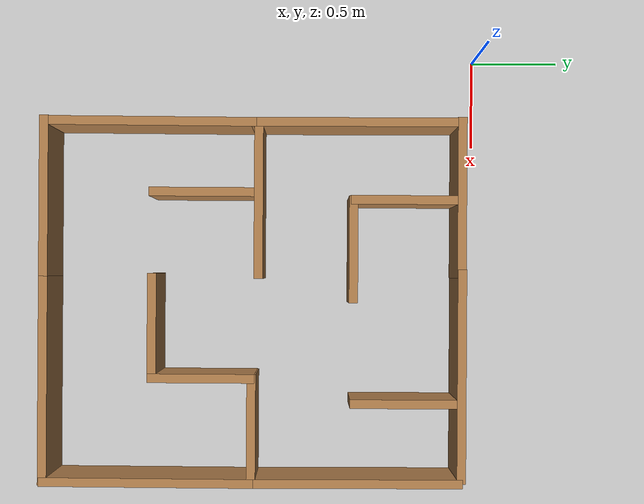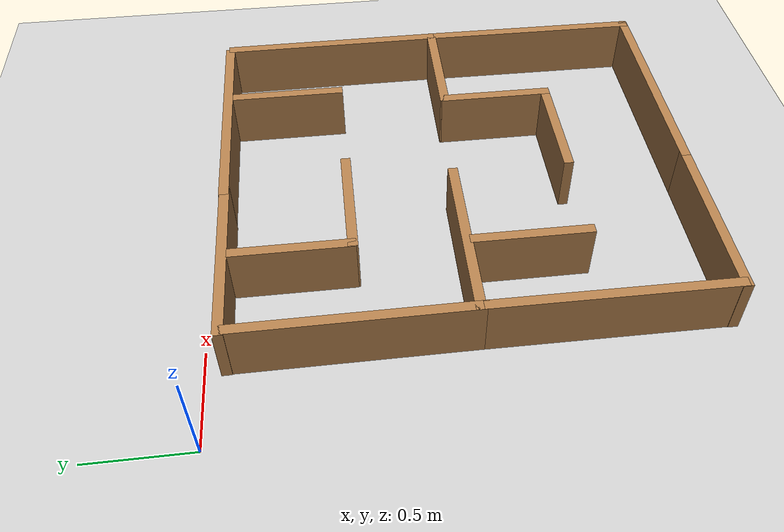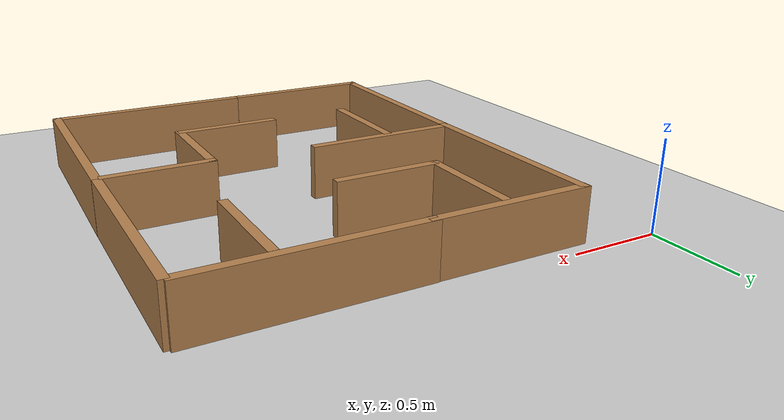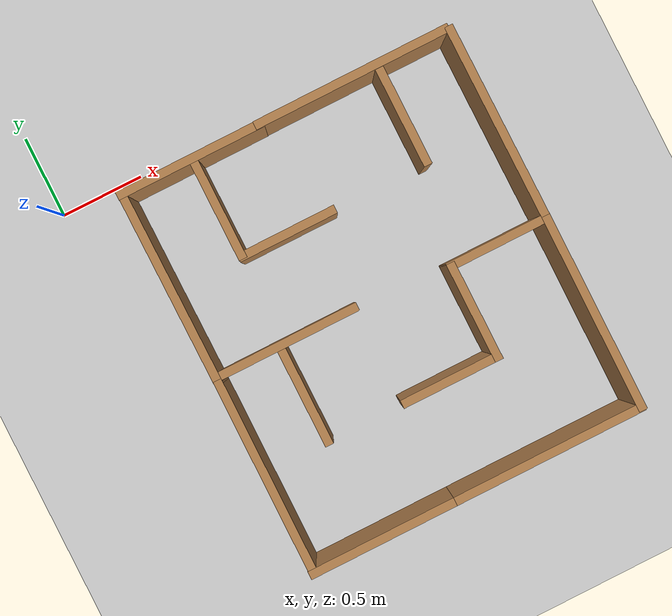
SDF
<sdf version="1.7">
 <world name="default">
  <light name="sun" type="directional">
   <pose>0 0 10 0 -0 0</pose>
   <diffuse>0.8 0.8 0.8 1</diffuse>
   <specular>0.2 0.2 0.2 1</specular>
   <attenuation>
    <range>1000</range>
    <constant>0.9</constant>
    <linear>0.01</linear>
    <quadratic>0.001</quadratic>
   </attenuation>
   <direction>-0.5 0.1 -0.9</direction>
   <spot><inner_angle>0</inner_angle><outer_angle>0</outer_angle><falloff>0</falloff></spot>
  </light>
  <model name="ground_plane">
   <static>1</static>
   <link name="link">
    <collision name="collision">
     <geometry><plane><normal>0 0 1</normal><size>100 100</size></plane></geometry>
     <surface><friction><ode><mu>100</mu><mu2>50</mu2></ode></friction></surface>
    </collision>
    <visual name="visual">
     <cast_shadows>0</cast_shadows>
     <geometry><plane><normal>0 0 1</normal><size>100 100</size></plane></geometry>
     <material>
      <script><uri>file://media/materials/scripts/gazebo.material</uri><name>Gazebo/Grey</name></script>
     </material>
    </visual>
   </link>
  </model>
  <gravity>0 0 -9.8</gravity>
  <magnetic_field>6e-06 2.3e-05 -4.2e-05</magnetic_field>
  <atmosphere type="adiabatic"/>
  <physics type="ode">
   <max_step_size>0.001</max_step_size>
   <real_time_factor>1</real_time_factor>
   <real_time_update_rate>1000</real_time_update_rate>
  </physics>
  <scene><ambient>0.4 0.4 0.4 1</ambient><background>0.7 0.7 0.7 1</background><shadows>1</shadows></scene>
  <spherical_coordinates>
   <surface_model>EARTH_WGS84</surface_model>
   <latitude_deg>0</latitude_deg>
   <longitude_deg>0</longitude_deg>
   <elevation>0</elevation>
   <heading_deg>0</heading_deg>
  </spherical_coordinates>
  <model name="wall90cm">
   <pose>0.820279 -2.44139 0 0 -0 0</pose>
   <link name="Wall_6">
    <collision name="Wall_6_Collision">
     <geometry><box><size>0.9 0.05 0.3</size></box></geometry>
     <pose>0 0 0.15 0 -0 0</pose>
    </collision>
    <visual name="Wall_6_Visual">
     <pose>0 0 0.15 0 -0 0</pose>
     <geometry><box><size>0.9 0.05 0.3</size></box></geometry>
     <material>
      <script><uri>file://media/materials/scripts/gazebo.material</uri><name>Gazebo/Wood</name></script>
      <ambient>1 1 1 1</ambient>
     </material>
     <meta><layer>0</layer></meta>
    </visual>
   </link>
   <static>1</static>
  </model>
  <model name="wall120cm">
   <pose>2.42344 -1.86218 0 0 0 -1.57432</pose>
   <link name="Wall_11">
    <collision name="Wall_11_Collision">
     <geometry><box><size>1.2 0.05 0.3</size></box></geometry>
     <pose>0 0 0.15 0 -0 0</pose>
    </collision>
    <visual name="Wall_11_Visual">
     <pose>0 0 0.15 0 -0 0</pose>
     <geometry><box><size>1.2 0.05 0.3</size></box></geometry>
     <material>
      <script><uri>file://media/materials/scripts/gazebo.material</uri><name>Gazebo/Wood</name></script>
      <ambient>1 1 1 1</ambient>
     </material>
     <meta><layer>0</layer></meta>
    </visual>
   </link>
   <static>1</static>
  </model>
  <model name="wall120cm_0">
   <pose>2.42296 -0.690179 0 0 0 -1.56713</pose>
   <link name="Wall_11">
    <collision name="Wall_11_Collision">
     <geometry><box><size>1.2 0.05 0.3</size></box></geometry>
     <pose>0 0 0.15 0 -0 0</pose>
    </collision>
    <visual name="Wall_11_Visual">
     <pose>0 0 0.15 0 -0 0</pose>
     <geometry><box><size>1.2 0.05 0.3</size></box></geometry>
     <material>
      <script><uri>file://media/materials/scripts/gazebo.material</uri><name>Gazebo/Wood</name></script>
      <ambient>1 1 1 1</ambient>
     </material>
     <meta><layer>0</layer></meta>
    </visual>
   </link>
   <static>1</static>
  </model>
  <model name="wall120cm_1">
   <pose>1.83807 -2.44151 0 0 -0 0</pose>
   <link name="Wall_11">
    <collision name="Wall_11_Collision">
     <geometry><box><size>1.2 0.05 0.3</size></box></geometry>
     <pose>0 0 0.15 0 -0 0</pose>
    </collision>
    <visual name="Wall_11_Visual">
     <pose>0 0 0.15 0 -0 0</pose>
     <geometry><box><size>1.2 0.05 0.3</size></box></geometry>
     <material>
      <script><uri>file://media/materials/scripts/gazebo.material</uri><name>Gazebo/Wood</name></script>
      <ambient>1 1 1 1</ambient>
     </material>
     <meta><layer>0</layer></meta>
    </visual>
   </link>
   <static>1</static>
  </model>
  <model name="wall120cm_2">
   <pose>1.82028 -0.097771 0 0 -0 0</pose>
   <link name="Wall_11">
    <collision name="Wall_11_Collision">
     <geometry><box><size>1.2 0.05 0.3</size></box></geometry>
     <pose>0 0 0.15 0 -0 0</pose>
    </collision>
    <visual name="Wall_11_Visual">
     <pose>0 0 0.15 0 -0 0</pose>
     <geometry><box><size>1.2 0.05 0.3</size></box></geometry>
     <material>
      <script><uri>file://media/materials/scripts/gazebo.material</uri><name>Gazebo/Wood</name></script>
      <ambient>1 1 1 1</ambient>
     </material>
     <meta><layer>0</layer></meta>
    </visual>
   </link>
   <static>1</static>
  </model>
  <model name="wall90cm_0">
   <pose>0.819818 -0.100866 0 0 -0 0</pose>
   <link name="Wall_6">
    <collision name="Wall_6_Collision">
     <geometry><box><size>0.9 0.05 0.3</size></box></geometry>
     <pose>0 0 0.15 0 -0 0</pose>
    </collision>
    <visual name="Wall_6_Visual">
     <pose>0 0 0.15 0 -0 0</pose>
     <geometry><box><size>0.9 0.05 0.3</size></box></geometry>
     <material>
      <script><uri>file://media/materials/scripts/gazebo.material</uri><name>Gazebo/Wood</name></script>
      <ambient>1 1 1 1</ambient>
     </material>
     <meta><layer>0</layer></meta>
    </visual>
   </link>
   <static>1</static>
  </model>
  <model name="wall120cm_clone">
   <pose>0.40003 -1.85291 0 0 0 -1.57432</pose>
   <link name="Wall_11">
    <collision name="Wall_11_Collision">
     <geometry><box><size>1.2 0.05 0.3</size></box></geometry>
     <pose>0 0 0.15 0 -0 0</pose>
    </collision>
    <visual name="Wall_11_Visual">
     <pose>0 0 0.15 0 -0 0</pose>
     <geometry><box><size>1.2 0.05 0.3</size></box></geometry>
     <material>
      <script><uri>file://media/materials/scripts/gazebo.material</uri><name>Gazebo/Wood</name></script>
      <ambient>1 1 1 1</ambient>
     </material>
     <meta><layer>0</layer></meta>
    </visual>
   </link>
   <static>1</static>
  </model>
  <model name="wall120cm_0_clone_0">
   <pose>0.399943 -0.679759 0 0 0 -1.56713</pose>
   <link name="Wall_11">
    <collision name="Wall_11_Collision">
     <geometry><box><size>1.2 0.05 0.3</size></box></geometry>
     <pose>0 0 0.15 0 -0 0</pose>
    </collision>
    <visual name="Wall_11_Visual">
     <pose>0 0 0.15 0 -0 0</pose>
     <geometry><box><size>1.2 0.05 0.3</size></box></geometry>
     <material>
      <script><uri>file://media/materials/scripts/gazebo.material</uri><name>Gazebo/Wood</name></script>
      <ambient>1 1 1 1</ambient>
     </material>
     <meta><layer>0</layer></meta>
    </visual>
   </link>
   <static>1</static>
  </model>
  <model name="wall60cm">
   <pose>1.83843 -1.55768 0 0 0 -1.57132</pose>
   <link name="Wall_4">
    <collision name="Wall_4_Collision">
     <geometry><box><size>0.6 0.05 0.3</size></box></geometry>
     <pose>0 0 0.15 0 -0 0</pose>
    </collision>
    <visual name="Wall_4_Visual">
     <pose>0 0 0.15 0 -0 0</pose>
     <geometry><box><size>0.6 0.05 0.3</size></box></geometry>
     <material>
      <script><uri>file://media/materials/scripts/gazebo.material</uri><name>Gazebo/Wood</name></script>
      <ambient>1 1 1 1</ambient>
     </material>
     <meta><layer>0</layer></meta>
    </visual>
   </link>
   <static>1</static>
  </model>
  <model name="wall60cm_0">
   <pose>2.11457 -1.27506 0 0 -0 0</pose>
   <link name="Wall_4">
    <collision name="Wall_4_Collision">
     <geometry><box><size>0.6 0.05 0.3</size></box></geometry>
     <pose>0 0 0.15 0 -0 0</pose>
    </collision>
    <visual name="Wall_4_Visual">
     <pose>0 0 0.15 0 -0 0</pose>
     <geometry><box><size>0.6 0.05 0.3</size></box></geometry>
     <material>
      <script><uri>file://media/materials/scripts/gazebo.material</uri><name>Gazebo/Wood</name></script>
      <ambient>1 1 1 1</ambient>
     </material>
     <meta><layer>0</layer></meta>
    </visual>
   </link>
   <static>1</static>
  </model>
  <model name="wall60cm_1">
   <pose>1.55052 -1.83295 0 0 -0 0</pose>
   <link name="Wall_4">
    <collision name="Wall_4_Collision">
     <geometry><box><size>0.6 0.05 0.3</size></box></geometry>
     <pose>0 0 0.15 0 -0 0</pose>
    </collision>
    <visual name="Wall_4_Visual">
     <pose>0 0 0.15 0 -0 0</pose>
     <geometry><box><size>0.6 0.05 0.3</size></box></geometry>
     <material>
      <script><uri>file://media/materials/scripts/gazebo.material</uri><name>Gazebo/Wood</name></script>
      <ambient>1 1 1 1</ambient>
     </material>
     <meta><layer>0</layer></meta>
    </visual>
   </link>
   <static>1</static>
  </model>
  <model name="wall60cm_clone">
   <pose>1.97592 -0.423422 0 0 0 -1.57132</pose>
   <link name="Wall_4">
    <collision name="Wall_4_Collision">
     <geometry><box><size>0.6 0.05 0.3</size></box></geometry>
     <pose>0 0 0.15 0 -0 0</pose>
    </collision>
    <visual name="Wall_4_Visual">
     <pose>0 0 0.15 0 -0 0</pose>
     <geometry><box><size>0.6 0.05 0.3</size></box></geometry>
     <material>
      <script><uri>file://media/materials/scripts/gazebo.material</uri><name>Gazebo/Wood</name></script>
      <ambient>1 1 1 1</ambient>
     </material>
     <meta><layer>0</layer></meta>
    </visual>
   </link>
   <static>1</static>
  </model>
  <model name="wall60cm_clone_0">
   <pose>0.833397 -0.422834 0 0 0 -1.57132</pose>
   <link name="Wall_4">
    <collision name="Wall_4_Collision">
     <geometry><box><size>0.6 0.05 0.3</size></box></geometry>
     <pose>0 0 0.15 0 -0 0</pose>
    </collision>
    <visual name="Wall_4_Visual">
     <pose>0 0 0.15 0 -0 0</pose>
     <geometry><box><size>0.6 0.05 0.3</size></box></geometry>
     <material>
      <script><uri>file://media/materials/scripts/gazebo.material</uri><name>Gazebo/Wood</name></script>
      <ambient>1 1 1 1</ambient>
     </material>
     <meta><layer>0</layer></meta>
    </visual>
   </link>
   <static>1</static>
  </model>
  <model name="wall60cm_0_clone">
   <pose>1.11221 -0.706629 0 0 -0 0</pose>
   <link name="Wall_4">
    <collision name="Wall_4_Collision">
     <geometry><box><size>0.6 0.05 0.3</size></box></geometry>
     <pose>0 0 0.15 0 -0 0</pose>
    </collision>
    <visual name="Wall_4_Visual">
     <pose>0 0 0.15 0 -0 0</pose>
     <geometry><box><size>0.6 0.05 0.3</size></box></geometry>
     <material>
      <script><uri>file://media/materials/scripts/gazebo.material</uri><name>Gazebo/Wood</name></script>
      <ambient>1 1 1 1</ambient>
     </material>
     <meta><layer>0</layer></meta>
    </visual>
   </link>
   <static>1</static>
  </model>
  <model name="wall90cm_1">
   <pose>0.82809 -1.2392 0 0 -0 0</pose>
   <link name="Wall_6">
    <collision name="Wall_6_Collision">
     <geometry><box><size>0.9 0.05 0.3</size></box></geometry>
     <pose>0 0 0.15 0 -0 0</pose>
    </collision>
    <visual name="Wall_6_Visual">
     <pose>0 0 0.15 0 -0 0</pose>
     <geometry><box><size>0.9 0.05 0.3</size></box></geometry>
     <material>
      <script><uri>file://media/materials/scripts/gazebo.material</uri><name>Gazebo/Wood</name></script>
      <ambient>1 1 1 1</ambient>
     </material>
     <meta><layer>0</layer></meta>
    </visual>
   </link>
   <static>1</static>
  </model>
  <model name="wall60cm_clone_1">
   <pose>0.79432 -1.55161 0 0 0 -1.57132</pose>
   <link name="Wall_4">
    <collision name="Wall_4_Collision">
     <geometry><box><size>0.6 0.05 0.3</size></box></geometry>
     <pose>0 0 0.15 0 -0 0</pose>
    </collision>
    <visual name="Wall_4_Visual">
     <pose>0 0 0.15 0 -0 0</pose>
     <geometry><box><size>0.6 0.05 0.3</size></box></geometry>
     <material>
      <script><uri>file://media/materials/scripts/gazebo.material</uri><name>Gazebo/Wood</name></script>
      <ambient>1 1 1 1</ambient>
     </material>
     <meta><layer>0</layer></meta>
    </visual>
   </link>
   <static>1</static>
  </model>
 </world>
</sdf>
